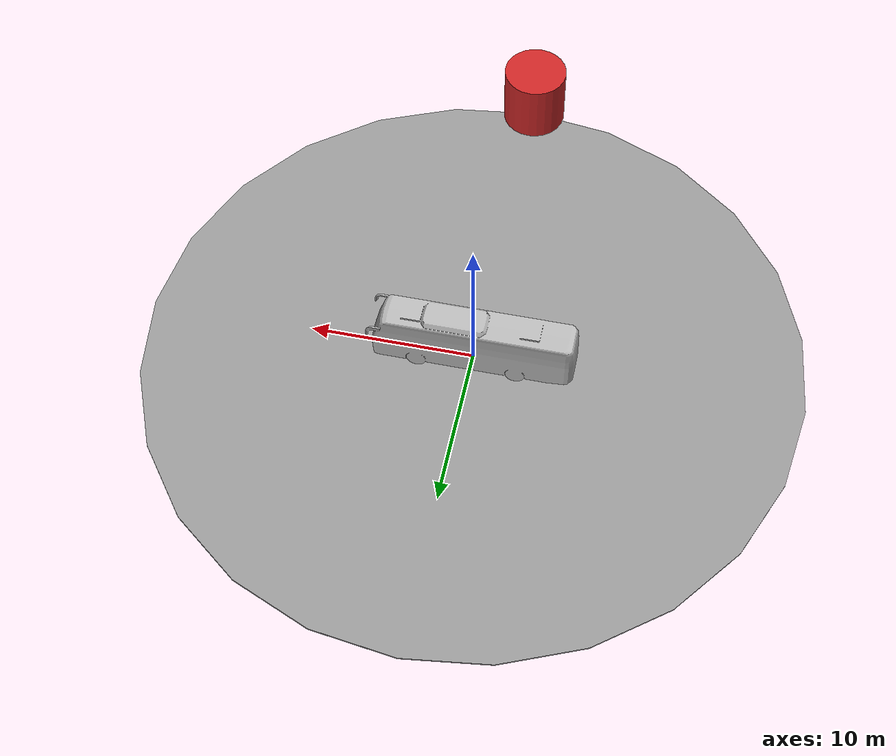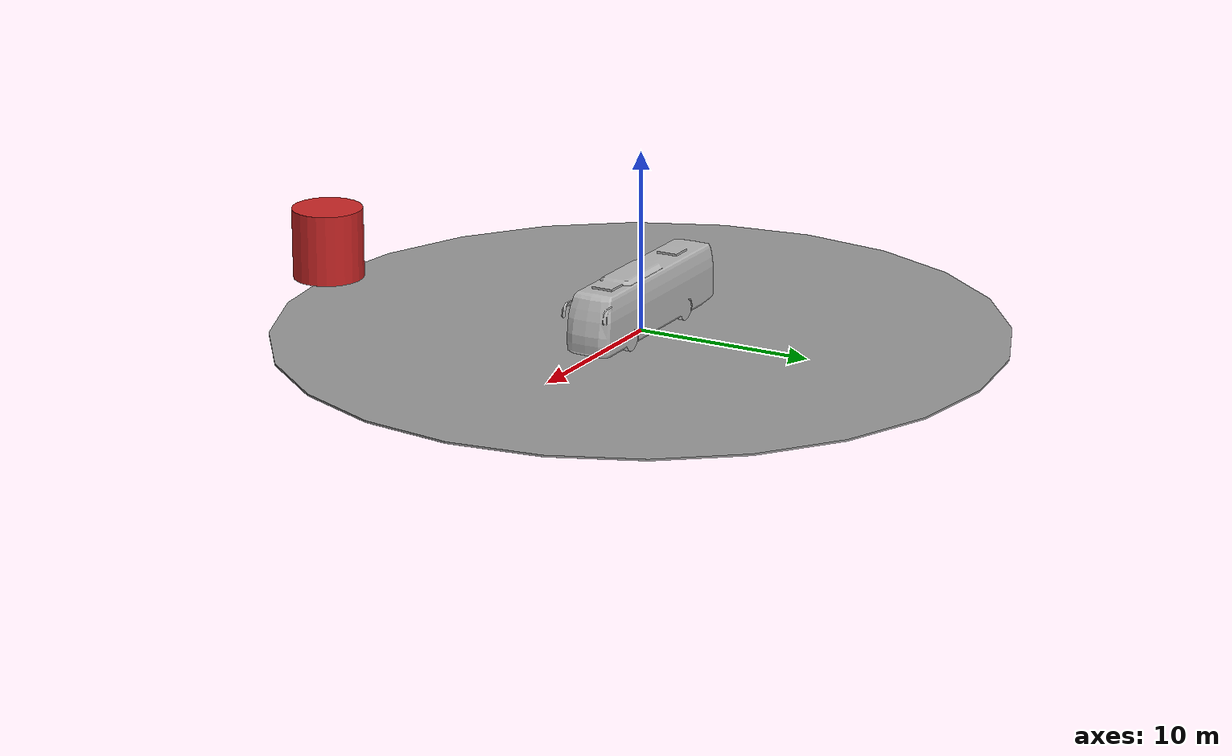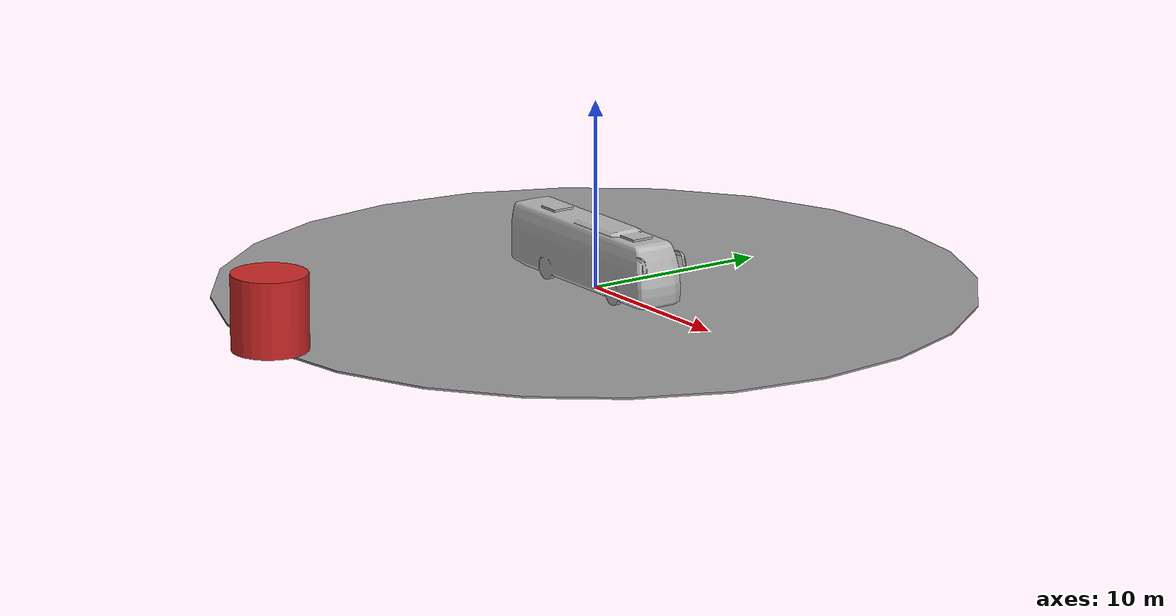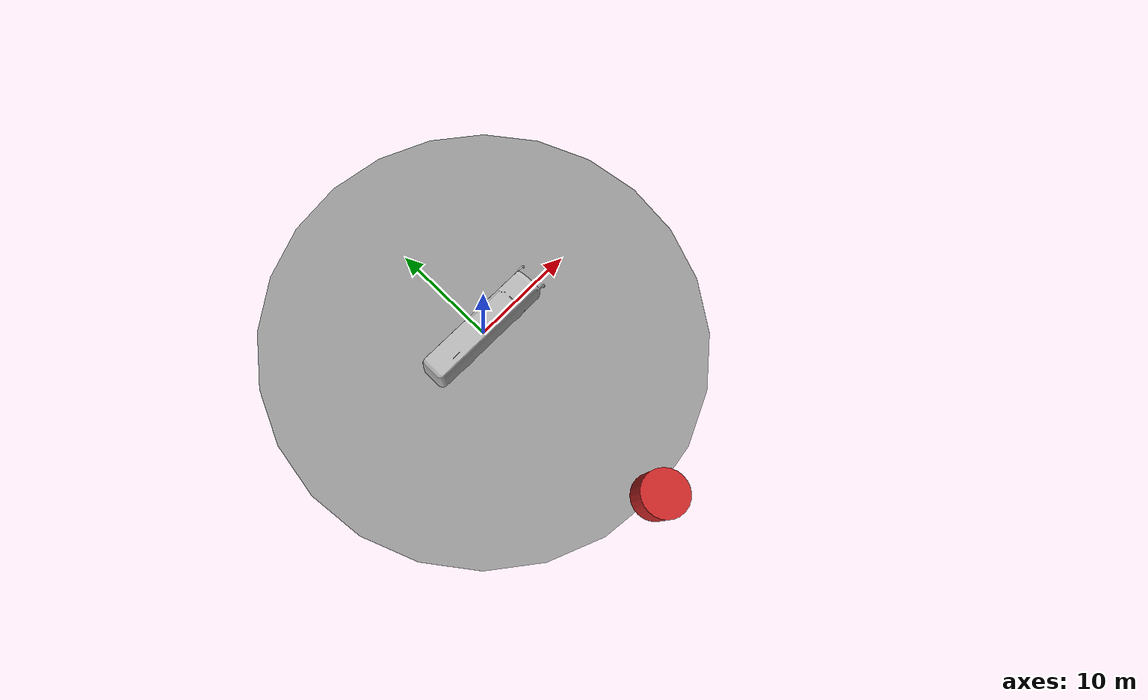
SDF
<sdf version='1.7'>
  <world name='se2_example'>

    <plugin name="gazebo_ros_init" filename="libgazebo_ros_init.so" />
    <plugin name="gazebo_ros_state" filename="libgazebo_ros_state.so" />

    <light name='sun' type='directional'>
      <cast_shadows>1</cast_shadows>
      <pose>0 0 100 0 -0 0</pose>
      <diffuse>0.8 0.8 0.8 1</diffuse>
      <specular>0.2 0.2 0.2 1</specular>
      <attenuation>
        <range>1000</range>
        <constant>0.9</constant>
        <linear>0.01</linear>
        <quadratic>0.001</quadratic>
      </attenuation>
      <direction>-0.5 0.1 -0.9</direction>
      <spot>
        <inner_angle>0</inner_angle>
        <outer_angle>0</outer_angle>
        <falloff>0</falloff>
      </spot>
    </light>

    <scene>
      <ambient>0.4 0.4 0.4 1</ambient>
      <background>0.7 0.7 0.7 1</background>
      <shadows>1</shadows>
    </scene>

    <model name='bus'>
      <static>1</static>
      <link name='link'>
        <visual name='visual'>
          <geometry>
            <mesh>
              <scale>0.01 0.01 0.01</scale>
              <uri>model://bus/meshes/bus.obj</uri>
            </mesh>
          </geometry>
            <pose>0 0 0 0 0 1.5708</pose>
        </visual>
        <self_collide>0</self_collide>
        <enable_wind>0</enable_wind>
        <kinematic>0</kinematic>
      </link>
      <pose>0 0 0 0 0 0</pose>
    </model>

    <model name='obstacle'>
      <static>1</static>
      <pose>0 -20 2 0 0 0</pose>
      <link name='link'>
        <visual name='visual'>
          <geometry>
            <cylinder>
              <radius>2</radius>
              <length>4</length>
            </cylinder>
          </geometry>
          <material>
            <script>
              <name>Gazebo/Red</name>
              <uri>file://media/materials/scripts/gazebo.material</uri>
            </script>
          </material>
        </visual>
        <self_collide>0</self_collide>
        <enable_wind>0</enable_wind>
        <kinematic>0</kinematic>
      </link>
    </model>

    <model name='unit_cylinder'>
      <static>1</static>
      <pose>0 0 -0.05 0 0 0</pose>
      <link name='link'>
        <visual name='visual'>
          <geometry>
            <cylinder>
              <radius>20</radius>
              <length>0.1</length>
            </cylinder>
          </geometry>
          <material>
            <script>
              <name>Gazebo/Grey</name>
              <uri>file://media/materials/scripts/gazebo.material</uri>
            </script>
          </material>
        </visual>
        <self_collide>0</self_collide>
        <enable_wind>0</enable_wind>
        <kinematic>0</kinematic>
      </link>
    </model>

    <gui fullscreen='0'>
      <camera name='user_camera'>
        <pose>46.1686 -37.6292 39.3393 0 0.659643 2.53619</pose>
        <view_controller>orbit</view_controller>
        <projection_type>perspective</projection_type>
      </camera>
    </gui>
  </world>
</sdf>
